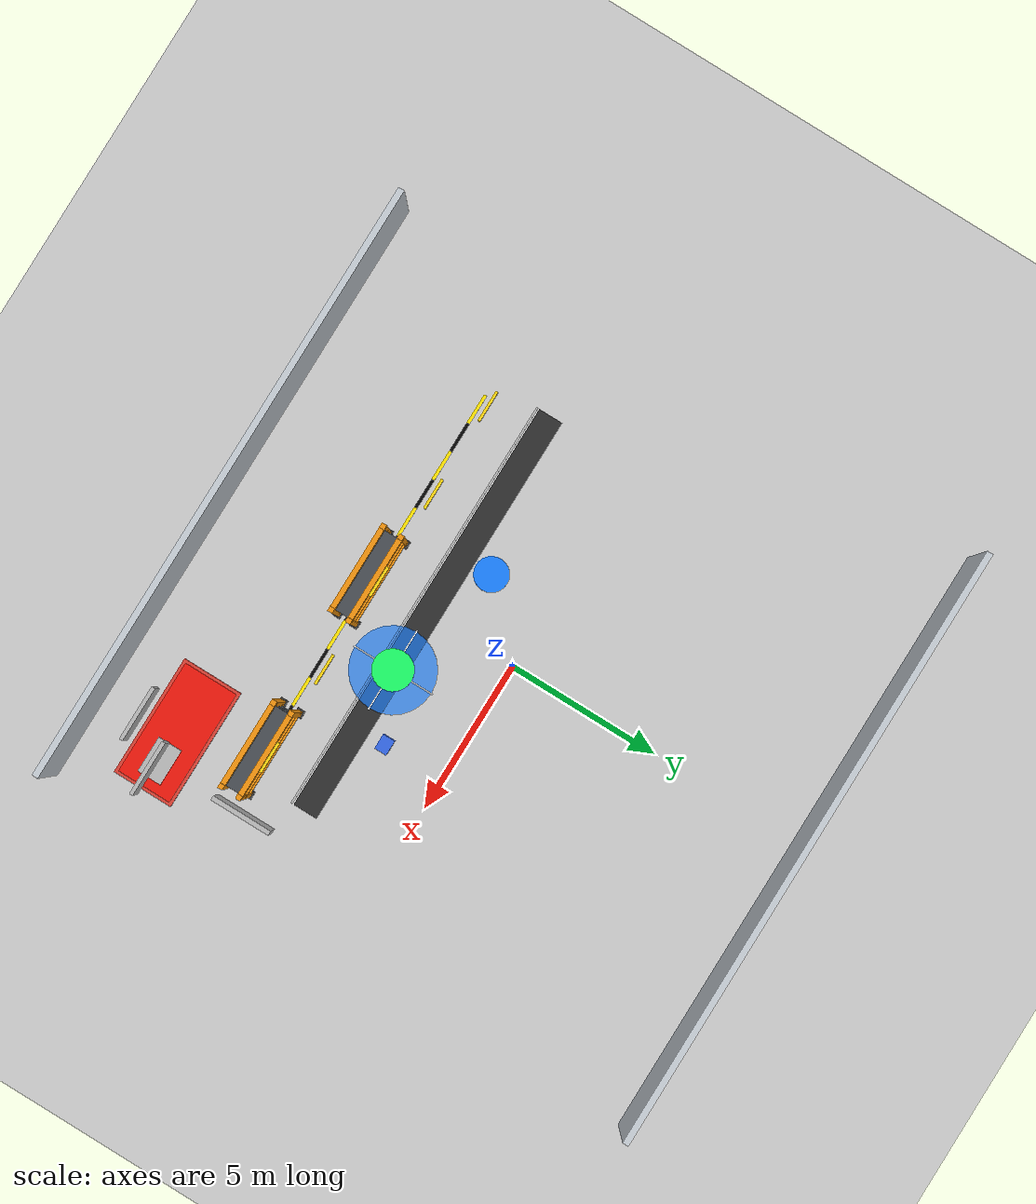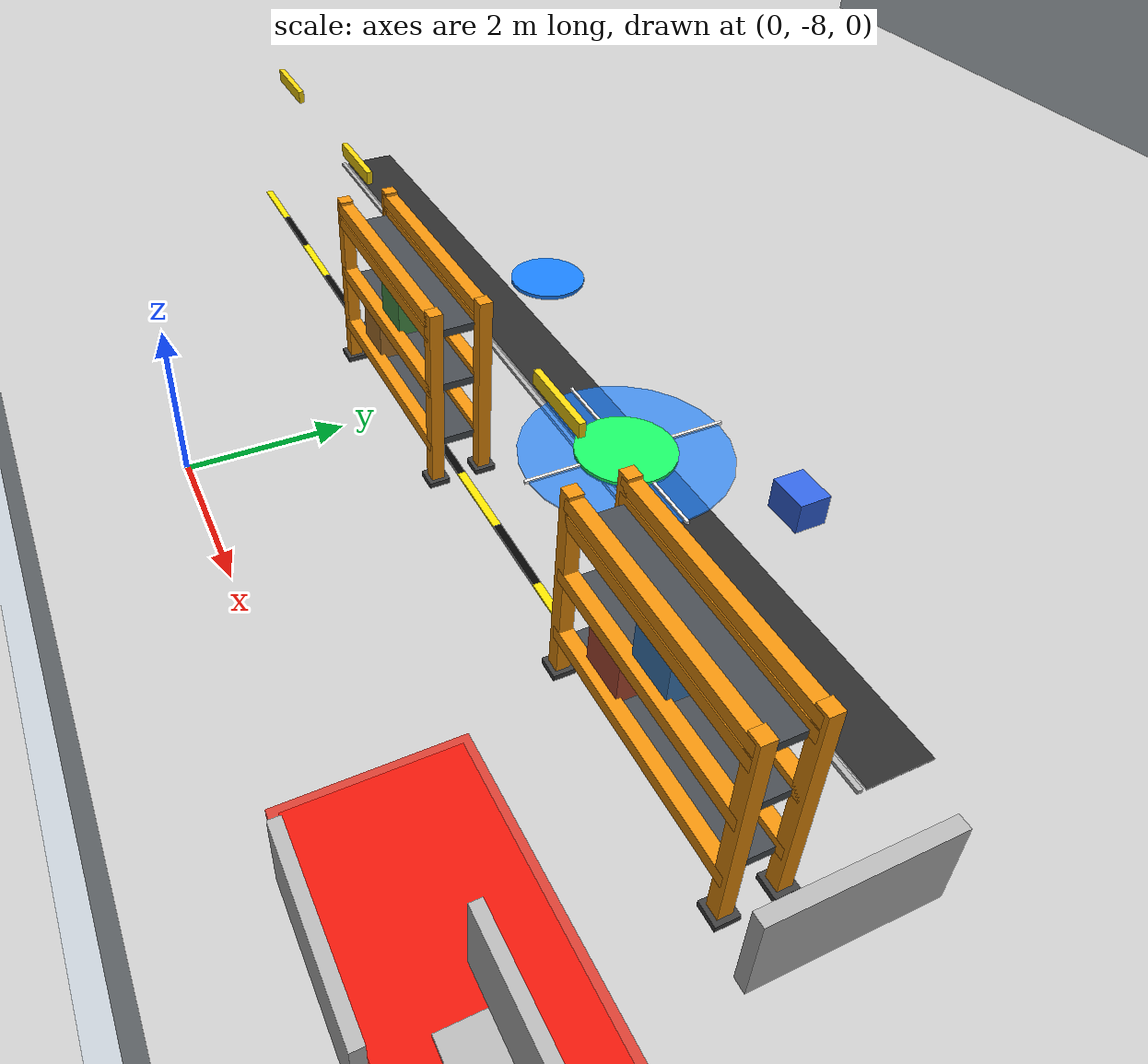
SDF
<sdf version="1.7">
 <world name="warehouse">
  <include><uri>model://sun</uri></include>
  <include><uri>model://ground_plane</uri></include>
  <model name="wall_left">
   <static>true</static>
   <link name="link">
    <collision name="collision"><geometry><box><size>20 0.2 2.5</size></box></geometry></collision>
    <visual name="visual">
     <geometry><box><size>20 0.2 2.5</size></box></geometry>
     <material><ambient>0.72 0.75 0.78 1</ambient><diffuse>0.78 0.81 0.84 1</diffuse></material>
    </visual>
    <pose>0 -10 1.25 0 0 0</pose>
   </link>
  </model>
  <model name="wall_right">
   <static>true</static>
   <link name="link">
    <collision name="collision"><geometry><box><size>20 0.2 2.5</size></box></geometry></collision>
    <visual name="visual">
     <geometry><box><size>20 0.2 2.5</size></box></geometry>
     <material><ambient>0.72 0.75 0.78 1</ambient><diffuse>0.78 0.81 0.84 1</diffuse></material>
    </visual>
    <pose>0 10 1.25 0 0 0</pose>
   </link>
  </model>
  <model name="aisle_cross">
   <static>true</static>
   <pose>0 -3.0 0.013 0 0 0</pose>
   <link name="link">
    <visual name="visual">
     <geometry><box><size>14.0 0.8 0.02</size></box></geometry>
     <material><ambient>0.18 0.18 0.18 1</ambient><diffuse>0.18 0.18 0.18 1</diffuse></material>
    </visual>
   </link>
  </model>
  <model name="shelf_2">
   <static>true</static>
   <pose>0 -5 0 0 0 0</pose>
   <link name="collision_frame">
    <collision name="collision"><geometry><box><size>3.0 0.8 2.4</size></box></geometry></collision>
   </link>
   <link name="upright_front_left">
    <visual name="visual">
     <geometry><box><size>0.16 0.16 2.4</size></box></geometry>
     <pose>-1.42 -0.30 1.20 0 0 0</pose>
     <material><ambient>0.80 0.45 0.04 1</ambient><diffuse>0.95 0.58 0.05 1</diffuse></material>
    </visual>
   </link>
   <link name="upright_front_right">
    <visual name="visual">
     <geometry><box><size>0.16 0.16 2.4</size></box></geometry>
     <pose>1.42 -0.30 1.20 0 0 0</pose>
     <material><ambient>0.80 0.45 0.04 1</ambient><diffuse>0.95 0.58 0.05 1</diffuse></material>
    </visual>
   </link>
   <link name="upright_rear_left">
    <visual name="visual">
     <geometry><box><size>0.16 0.16 2.4</size></box></geometry>
     <pose>-1.42 0.30 1.20 0 0 0</pose>
     <material><ambient>0.80 0.45 0.04 1</ambient><diffuse>0.95 0.58 0.05 1</diffuse></material>
    </visual>
   </link>
   <link name="upright_rear_right">
    <visual name="visual">
     <geometry><box><size>0.16 0.16 2.4</size></box></geometry>
     <pose>1.42 0.30 1.20 0 0 0</pose>
     <material><ambient>0.80 0.45 0.04 1</ambient><diffuse>0.95 0.58 0.05 1</diffuse></material>
    </visual>
   </link>
   <link name="top_beam_front">
    <visual name="visual">
     <geometry><box><size>2.90 0.16 0.16</size></box></geometry>
     <pose>0 -0.30 2.28 0 0 0</pose>
     <material><ambient>0.80 0.45 0.04 1</ambient><diffuse>0.95 0.58 0.05 1</diffuse></material>
    </visual>
   </link>
   <link name="top_beam_rear">
    <visual name="visual">
     <geometry><box><size>2.90 0.16 0.16</size></box></geometry>
     <pose>0 0.30 2.28 0 0 0</pose>
     <material><ambient>0.80 0.45 0.04 1</ambient><diffuse>0.95 0.58 0.05 1</diffuse></material>
    </visual>
   </link>
   <link name="level_1_front">
    <visual name="visual">
     <geometry><box><size>2.90 0.16 0.16</size></box></geometry>
     <pose>0 -0.30 0.55 0 0 0</pose>
     <material><ambient>0.80 0.45 0.04 1</ambient><diffuse>0.95 0.58 0.05 1</diffuse></material>
    </visual>
   </link>
   <link name="level_1_rear">
    <visual name="visual">
     <geometry><box><size>2.90 0.16 0.16</size></box></geometry>
     <pose>0 0.30 0.55 0 0 0</pose>
     <material><ambient>0.80 0.45 0.04 1</ambient><diffuse>0.95 0.58 0.05 1</diffuse></material>
    </visual>
   </link>
   <link name="level_2_front">
    <visual name="visual">
     <geometry><box><size>2.90 0.16 0.16</size></box></geometry>
     <pose>0 -0.30 1.35 0 0 0</pose>
     <material><ambient>0.80 0.45 0.04 1</ambient><diffuse>0.95 0.58 0.05 1</diffuse></material>
    </visual>
   </link>
   <link name="level_2_rear">
    <visual name="visual">
     <geometry><box><size>2.90 0.16 0.16</size></box></geometry>
     <pose>0 0.30 1.35 0 0 0</pose>
     <material><ambient>0.80 0.45 0.04 1</ambient><diffuse>0.95 0.58 0.05 1</diffuse></material>
    </visual>
   </link>
   <link name="level_3_front">
    <visual name="visual">
     <geometry><box><size>2.90 0.16 0.16</size></box></geometry>
     <pose>0 -0.30 2.10 0 0 0</pose>
     <material><ambient>0.80 0.45 0.04 1</ambient><diffuse>0.95 0.58 0.05 1</diffuse></material>
    </visual>
   </link>
   <link name="level_3_rear">
    <visual name="visual">
     <geometry><box><size>2.90 0.16 0.16</size></box></geometry>
     <pose>0 0.30 2.10 0 0 0</pose>
     <material><ambient>0.80 0.45 0.04 1</ambient><diffuse>0.95 0.58 0.05 1</diffuse></material>
    </visual>
   </link>
   <link name="deck_1">
    <visual name="visual">
     <geometry><box><size>2.72 0.56 0.10</size></box></geometry>
     <pose>0 0 0.49 0 0 0</pose>
     <material><ambient>0.18 0.20 0.22 1</ambient><diffuse>0.28 0.30 0.32 1</diffuse></material>
    </visual>
   </link>
   <link name="deck_2">
    <visual name="visual">
     <geometry><box><size>2.72 0.56 0.10</size></box></geometry>
     <pose>0 0 1.29 0 0 0</pose>
     <material><ambient>0.18 0.20 0.22 1</ambient><diffuse>0.28 0.30 0.32 1</diffuse></material>
    </visual>
   </link>
   <link name="deck_3">
    <visual name="visual">
     <geometry><box><size>2.72 0.56 0.10</size></box></geometry>
     <pose>0 0 2.04 0 0 0</pose>
     <material><ambient>0.18 0.20 0.22 1</ambient><diffuse>0.28 0.30 0.32 1</diffuse></material>
    </visual>
   </link>
   <link name="base_plate_left_front">
    <visual name="visual">
     <geometry><box><size>0.26 0.26 0.07</size></box></geometry>
     <pose>-1.42 -0.30 0.025 0 0 0</pose>
     <material><ambient>0.20 0.20 0.20 1</ambient><diffuse>0.25 0.25 0.25 1</diffuse></material>
    </visual>
   </link>
   <link name="base_plate_right_front">
    <visual name="visual">
     <geometry><box><size>0.26 0.26 0.07</size></box></geometry>
     <pose>1.42 -0.30 0.025 0 0 0</pose>
     <material><ambient>0.20 0.20 0.20 1</ambient><diffuse>0.25 0.25 0.25 1</diffuse></material>
    </visual>
   </link>
   <link name="base_plate_left_rear">
    <visual name="visual">
     <geometry><box><size>0.26 0.26 0.07</size></box></geometry>
     <pose>-1.42 0.30 0.025 0 0 0</pose>
     <material><ambient>0.20 0.20 0.20 1</ambient><diffuse>0.25 0.25 0.25 1</diffuse></material>
    </visual>
   </link>
   <link name="base_plate_right_rear">
    <visual name="visual">
     <geometry><box><size>0.26 0.26 0.07</size></box></geometry>
     <pose>1.42 0.30 0.025 0 0 0</pose>
     <material><ambient>0.20 0.20 0.20 1</ambient><diffuse>0.25 0.25 0.25 1</diffuse></material>
    </visual>
   </link>
  </model>
  <model name="shelf_3">
   <static>true</static>
   <pose>6 -5 0 0 0 0</pose>
   <link name="collision_frame">
    <collision name="collision"><geometry><box><size>3.0 0.8 2.4</size></box></geometry></collision>
   </link>
   <link name="upright_front_left">
    <visual name="visual">
     <geometry><box><size>0.16 0.16 2.4</size></box></geometry>
     <pose>-1.42 -0.30 1.20 0 0 0</pose>
     <material><ambient>0.80 0.45 0.04 1</ambient><diffuse>0.95 0.58 0.05 1</diffuse></material>
    </visual>
   </link>
   <link name="upright_front_right">
    <visual name="visual">
     <geometry><box><size>0.16 0.16 2.4</size></box></geometry>
     <pose>1.42 -0.30 1.20 0 0 0</pose>
     <material><ambient>0.80 0.45 0.04 1</ambient><diffuse>0.95 0.58 0.05 1</diffuse></material>
    </visual>
   </link>
   <link name="upright_rear_left">
    <visual name="visual">
     <geometry><box><size>0.16 0.16 2.4</size></box></geometry>
     <pose>-1.42 0.30 1.20 0 0 0</pose>
     <material><ambient>0.80 0.45 0.04 1</ambient><diffuse>0.95 0.58 0.05 1</diffuse></material>
    </visual>
   </link>
   <link name="upright_rear_right">
    <visual name="visual">
     <geometry><box><size>0.16 0.16 2.4</size></box></geometry>
     <pose>1.42 0.30 1.20 0 0 0</pose>
     <material><ambient>0.80 0.45 0.04 1</ambient><diffuse>0.95 0.58 0.05 1</diffuse></material>
    </visual>
   </link>
   <link name="top_beam_front">
    <visual name="visual">
     <geometry><box><size>2.90 0.16 0.16</size></box></geometry>
     <pose>0 -0.30 2.28 0 0 0</pose>
     <material><ambient>0.80 0.45 0.04 1</ambient><diffuse>0.95 0.58 0.05 1</diffuse></material>
    </visual>
   </link>
   <link name="top_beam_rear">
    <visual name="visual">
     <geometry><box><size>2.90 0.16 0.16</size></box></geometry>
     <pose>0 0.30 2.28 0 0 0</pose>
     <material><ambient>0.80 0.45 0.04 1</ambient><diffuse>0.95 0.58 0.05 1</diffuse></material>
    </visual>
   </link>
   <link name="level_1_front">
    <visual name="visual">
     <geometry><box><size>2.90 0.16 0.16</size></box></geometry>
     <pose>0 -0.30 0.55 0 0 0</pose>
     <material><ambient>0.80 0.45 0.04 1</ambient><diffuse>0.95 0.58 0.05 1</diffuse></material>
    </visual>
   </link>
   <link name="level_1_rear">
    <visual name="visual">
     <geometry><box><size>2.90 0.16 0.16</size></box></geometry>
     <pose>0 0.30 0.55 0 0 0</pose>
     <material><ambient>0.80 0.45 0.04 1</ambient><diffuse>0.95 0.58 0.05 1</diffuse></material>
    </visual>
   </link>
   <link name="level_2_front">
    <visual name="visual">
     <geometry><box><size>2.90 0.16 0.16</size></box></geometry>
     <pose>0 -0.30 1.35 0 0 0</pose>
     <material><ambient>0.80 0.45 0.04 1</ambient><diffuse>0.95 0.58 0.05 1</diffuse></material>
    </visual>
   </link>
   <link name="level_2_rear">
    <visual name="visual">
     <geometry><box><size>2.90 0.16 0.16</size></box></geometry>
     <pose>0 0.30 1.35 0 0 0</pose>
     <material><ambient>0.80 0.45 0.04 1</ambient><diffuse>0.95 0.58 0.05 1</diffuse></material>
    </visual>
   </link>
   <link name="level_3_front">
    <visual name="visual">
     <geometry><box><size>2.90 0.16 0.16</size></box></geometry>
     <pose>0 -0.30 2.10 0 0 0</pose>
     <material><ambient>0.80 0.45 0.04 1</ambient><diffuse>0.95 0.58 0.05 1</diffuse></material>
    </visual>
   </link>
   <link name="level_3_rear">
    <visual name="visual">
     <geometry><box><size>2.90 0.16 0.16</size></box></geometry>
     <pose>0 0.30 2.10 0 0 0</pose>
     <material><ambient>0.80 0.45 0.04 1</ambient><diffuse>0.95 0.58 0.05 1</diffuse></material>
    </visual>
   </link>
   <link name="deck_1">
    <visual name="visual">
     <geometry><box><size>2.72 0.56 0.10</size></box></geometry>
     <pose>0 0 0.49 0 0 0</pose>
     <material><ambient>0.18 0.20 0.22 1</ambient><diffuse>0.28 0.30 0.32 1</diffuse></material>
    </visual>
   </link>
   <link name="deck_2">
    <visual name="visual">
     <geometry><box><size>2.72 0.56 0.10</size></box></geometry>
     <pose>0 0 1.29 0 0 0</pose>
     <material><ambient>0.18 0.20 0.22 1</ambient><diffuse>0.28 0.30 0.32 1</diffuse></material>
    </visual>
   </link>
   <link name="deck_3">
    <visual name="visual">
     <geometry><box><size>2.72 0.56 0.10</size></box></geometry>
     <pose>0 0 2.04 0 0 0</pose>
     <material><ambient>0.18 0.20 0.22 1</ambient><diffuse>0.28 0.30 0.32 1</diffuse></material>
    </visual>
   </link>
   <link name="base_plate_left_front">
    <visual name="visual">
     <geometry><box><size>0.26 0.26 0.07</size></box></geometry>
     <pose>-1.42 -0.30 0.025 0 0 0</pose>
     <material><ambient>0.20 0.20 0.20 1</ambient><diffuse>0.25 0.25 0.25 1</diffuse></material>
    </visual>
   </link>
   <link name="base_plate_right_front">
    <visual name="visual">
     <geometry><box><size>0.26 0.26 0.07</size></box></geometry>
     <pose>1.42 -0.30 0.025 0 0 0</pose>
     <material><ambient>0.20 0.20 0.20 1</ambient><diffuse>0.25 0.25 0.25 1</diffuse></material>
    </visual>
   </link>
   <link name="base_plate_left_rear">
    <visual name="visual">
     <geometry><box><size>0.26 0.26 0.07</size></box></geometry>
     <pose>-1.42 0.30 0.025 0 0 0</pose>
     <material><ambient>0.20 0.20 0.20 1</ambient><diffuse>0.25 0.25 0.25 1</diffuse></material>
    </visual>
   </link>
   <link name="base_plate_right_rear">
    <visual name="visual">
     <geometry><box><size>0.26 0.26 0.07</size></box></geometry>
     <pose>1.42 0.30 0.025 0 0 0</pose>
     <material><ambient>0.20 0.20 0.20 1</ambient><diffuse>0.25 0.25 0.25 1</diffuse></material>
    </visual>
   </link>
  </model>
  <model name="rack2_box_a">
   <static>true</static>
   <pose>-0.7 -5.0 0.82 0 0 0</pose>
   <link name="link">
    <visual name="visual">
     <geometry><box><size>0.55 0.55 0.50</size></box></geometry>
     <material><ambient>0.72 0.48 0.18 1</ambient><diffuse>0.72 0.48 0.18 1</diffuse></material>
    </visual>
   </link>
  </model>
  <model name="rack2_box_b">
   <static>true</static>
   <pose>0.0 -5.0 1.62 0 0 0</pose>
   <link name="link">
    <visual name="visual">
     <geometry><box><size>0.55 0.55 0.50</size></box></geometry>
     <material><ambient>0.30 0.60 0.30 1</ambient><diffuse>0.30 0.60 0.30 1</diffuse></material>
    </visual>
   </link>
  </model>
  <model name="rack3_box_a">
   <static>true</static>
   <pose>5.3 -5.0 0.82 0 0 0</pose>
   <link name="link">
    <visual name="visual">
     <geometry><box><size>0.55 0.55 0.50</size></box></geometry>
     <material><ambient>0.72 0.30 0.20 1</ambient><diffuse>0.72 0.30 0.20 1</diffuse></material>
    </visual>
   </link>
  </model>
  <model name="rack3_box_b">
   <static>true</static>
   <pose>6.0 -5.0 1.62 0 0 0</pose>
   <link name="link">
    <visual name="visual">
     <geometry><box><size>0.55 0.55 0.50</size></box></geometry>
     <material><ambient>0.25 0.50 0.75 1</ambient><diffuse>0.25 0.50 0.75 1</diffuse></material>
    </visual>
   </link>
  </model>
  <model name="box_2">
   <pose>4 -2 0.55 0 0 0</pose>
   <static>true</static>
   <link name="link">
    <collision name="collision"><geometry><box><size>0.5 0.4 0.4</size></box></geometry></collision>
    <visual name="visual">
     <geometry><box><size>0.5 0.4 0.4</size></box></geometry>
     <material><ambient>0.2 0.4 0.9 1</ambient><diffuse>0.2 0.4 0.9 1</diffuse></material>
    </visual>
   </link>
  </model>
  <model name="delivery_zone">
   <static>true</static>
   <pose>7.0 -7.5 0.05 0 0 0</pose>
   <link name="link">
    <visual name="visual">
     <material><ambient>0.55 0.12 0.10 1</ambient><diffuse>0.85 0.25 0.20 1</diffuse></material>
     <geometry><box><size>4.0 2.0 0.10</size></box></geometry>
    </visual>
   </link>
  </model>
  <model name="pallet_4">
   <static>true</static>
   <pose>8.0 -7.5 0.075 0 0 0</pose>
   <link name="link">
    <visual name="visual"><geometry><box><size>1.2 0.8 0.15</size></box></geometry></visual>
   </link>
  </model>
  <model name="safety_line_cross">
   <static>true</static>
   <pose>0 -3.48 0.025 0 0 0</pose>
   <link name="link">
    <visual name="visual"><geometry><box><size>14.0 0.06 0.05</size></box></geometry></visual>
   </link>
  </model>
  <model name="sign_outbound">
   <static>true</static>
   <pose>7.0 -8.6 1.2 0 0 0</pose>
   <link name="link">
    <visual name="visual"><geometry><box><size>1.8 0.12 0.8</size></box></geometry></visual>
   </link>
  </model>
  <model name="sign_delivery">
   <static>true</static>
   <pose>8.2 -7.5 1.2 0 0 0</pose>
   <link name="link">
    <visual name="visual"><geometry><box><size>1.8 0.12 0.8</size></box></geometry></visual>
   </link>
  </model>
  <model name="safety_barrier_2">
   <static>true</static>
   <pose>8.0 -4.5 0.5 0 0 0</pose>
   <link name="link">
    <visual name="visual"><geometry><box><size>0.15 2.0 1.0</size></box></geometry></visual>
   </link>
  </model>
  <model name="v52_delivery_marker">
   <static>true</static>
   <pose>7.0 -7.5 0.115 0 0 0</pose>
   <link name="link">
    <visual name="marker">
     <geometry><box><size>3.80 1.80 0.025</size></box></geometry>
     <material><ambient>0.90 0.05 0.05 0.80</ambient><diffuse>1.00 0.10 0.05 0.80</diffuse></material>
    </visual>
   </link>
  </model>
  <model name="v52_handover_marker">
   <static>true</static>
   <pose>2.0 -3.0 0.065 0 0 0</pose>
   <link name="link">
    <visual name="marker">
     <geometry><cylinder><radius>1.35</radius><length>0.025</length></cylinder></geometry>
     <material><ambient>0.05 0.35 0.95 0.70</ambient><diffuse>0.10 0.50 1.00 0.70</diffuse></material>
    </visual>
   </link>
  </model>
  <model name="v52_safety_stripes_1">
   <static>true</static>
   <pose>0.0 -5.0 0.035 0 0 0</pose>
   <link name="link">
    <visual name="stripe_a">
     <pose>-6.0 0 0 0 0 0</pose>
     <geometry><box><size>1.0 0.10 0.025</size></box></geometry>
     <material><ambient>1 0.85 0 1</ambient><diffuse>1 0.9 0 1</diffuse></material>
    </visual>
    <visual name="stripe_b">
     <pose>-5.0 0 0 0 0 0</pose>
     <geometry><box><size>1.0 0.10 0.025</size></box></geometry>
     <material><ambient>0.02 0.02 0.02 1</ambient><diffuse>0.02 0.02 0.02 1</diffuse></material>
    </visual>
    <visual name="stripe_c">
     <pose>-4.0 0 0 0 0 0</pose>
     <geometry><box><size>1.0 0.10 0.025</size></box></geometry>
     <material><ambient>1 0.85 0 1</ambient><diffuse>1 0.9 0 1</diffuse></material>
    </visual>
    <visual name="stripe_d">
     <pose>-3.0 0 0 0 0 0</pose>
     <geometry><box><size>1.0 0.10 0.025</size></box></geometry>
     <material><ambient>0.02 0.02 0.02 1</ambient><diffuse>0.02 0.02 0.02 1</diffuse></material>
    </visual>
    <visual name="stripe_e">
     <pose>-2.0 0 0 0 0 0</pose>
     <geometry><box><size>1.0 0.10 0.025</size></box></geometry>
     <material><ambient>1 0.85 0 1</ambient><diffuse>1 0.9 0 1</diffuse></material>
    </visual>
    <visual name="stripe_f">
     <pose>-1.0 0 0 0 0 0</pose>
     <geometry><box><size>1.0 0.10 0.025</size></box></geometry>
     <material><ambient>0.02 0.02 0.02 1</ambient><diffuse>0.02 0.02 0.02 1</diffuse></material>
    </visual>
    <visual name="stripe_g">
     <geometry><box><size>1.0 0.10 0.025</size></box></geometry>
     <material><ambient>1 0.85 0 1</ambient><diffuse>1 0.9 0 1</diffuse></material>
    </visual>
    <visual name="stripe_h">
     <pose>1.0 0 0 0 0 0</pose>
     <geometry><box><size>1.0 0.10 0.025</size></box></geometry>
     <material><ambient>0.02 0.02 0.02 1</ambient><diffuse>0.02 0.02 0.02 1</diffuse></material>
    </visual>
    <visual name="stripe_i">
     <pose>2.0 0 0 0 0 0</pose>
     <geometry><box><size>1.0 0.10 0.025</size></box></geometry>
     <material><ambient>1 0.85 0 1</ambient><diffuse>1 0.9 0 1</diffuse></material>
    </visual>
    <visual name="stripe_j">
     <pose>3.0 0 0 0 0 0</pose>
     <geometry><box><size>1.0 0.10 0.025</size></box></geometry>
     <material><ambient>0.02 0.02 0.02 1</ambient><diffuse>0.02 0.02 0.02 1</diffuse></material>
    </visual>
    <visual name="stripe_k">
     <pose>4.0 0 0 0 0 0</pose>
     <geometry><box><size>1.0 0.10 0.025</size></box></geometry>
     <material><ambient>1 0.85 0 1</ambient><diffuse>1 0.9 0 1</diffuse></material>
    </visual>
    <visual name="stripe_l">
     <pose>5.0 0 0 0 0 0</pose>
     <geometry><box><size>1.0 0.10 0.025</size></box></geometry>
     <material><ambient>0.02 0.02 0.02 1</ambient><diffuse>0.02 0.02 0.02 1</diffuse></material>
    </visual>
   </link>
  </model>
  <model name="v52_ammr_start">
   <static>true</static>
   <pose>-2.0 -2.0 0.075 0 0 0</pose>
   <link name="link">
    <visual name="pad">
     <geometry><cylinder><radius>0.55</radius><length>0.06</length></cylinder></geometry>
     <material><ambient>0.05 0.35 1 0.90</ambient><diffuse>0.10 0.50 1 0.90</diffuse></material>
    </visual>
   </link>
  </model>
  <model name="v52_ammr_arrival">
   <static>true</static>
   <pose>2.0 -3.0 0.09 0 0 0</pose>
   <link name="link">
    <visual name="pad">
     <geometry><cylinder><radius>0.65</radius><length>0.06</length></cylinder></geometry>
     <material><ambient>0.05 0.90 0.30 0.90</ambient><diffuse>0.10 1.00 0.40 0.90</diffuse></material>
    </visual>
   </link>
  </model>
  <model name="v52_rack_id_markers">
   <static>true</static>
   <pose>0 -4.58 2.05 0 0 0</pose>
   <link name="link">
    <visual name="r1">
     <pose>-6 0 0 0 0 0</pose>
     <geometry><box><size>1.0 0.08 0.18</size></box></geometry>
     <material><ambient>1 0.75 0.05 1</ambient><diffuse>1 0.85 0.05 1</diffuse></material>
    </visual>
    <visual name="r2">
     <pose>-3 0 0 0 0 0</pose>
     <geometry><box><size>1.0 0.08 0.18</size></box></geometry>
     <material><ambient>1 0.75 0.05 1</ambient><diffuse>1 0.85 0.05 1</diffuse></material>
    </visual>
    <visual name="r3">
     <geometry><box><size>1.0 0.08 0.18</size></box></geometry>
     <material><ambient>1 0.75 0.05 1</ambient><diffuse>1 0.85 0.05 1</diffuse></material>
    </visual>
    <visual name="r4">
     <pose>3 0 0 0 0 0</pose>
     <geometry><box><size>1.0 0.08 0.18</size></box></geometry>
     <material><ambient>1 0.75 0.05 1</ambient><diffuse>1 0.85 0.05 1</diffuse></material>
    </visual>
    <visual name="r5">
     <pose>6 0 0 0 0 0</pose>
     <geometry><box><size>1.0 0.08 0.18</size></box></geometry>
     <material><ambient>1 0.75 0.05 1</ambient><diffuse>1 0.85 0.05 1</diffuse></material>
    </visual>
   </link>
  </model>
  <model name="v52_handover_border">
   <static>true</static>
   <pose>2.0 -3.0 0.08 0 0 0</pose>
   <link name="link">
    <visual name="border_x">
     <geometry><box><size>2.8 0.04 0.04</size></box></geometry>
     <material><ambient>1 1 1 0.90</ambient><diffuse>1 1 1 0.90</diffuse></material>
    </visual>
    <visual name="border_y">
     <pose>0 0 0 0 0 1.5708</pose>
     <geometry><box><size>2.8 0.04 0.04</size></box></geometry>
     <material><ambient>1 1 1 0.90</ambient><diffuse>1 1 1 0.90</diffuse></material>
    </visual>
   </link>
  </model>
 </world>
</sdf>
